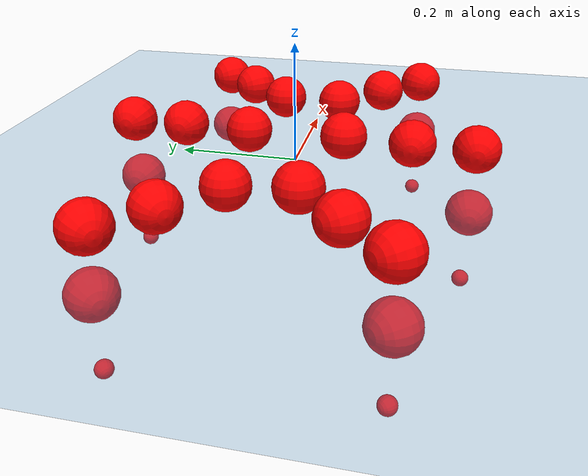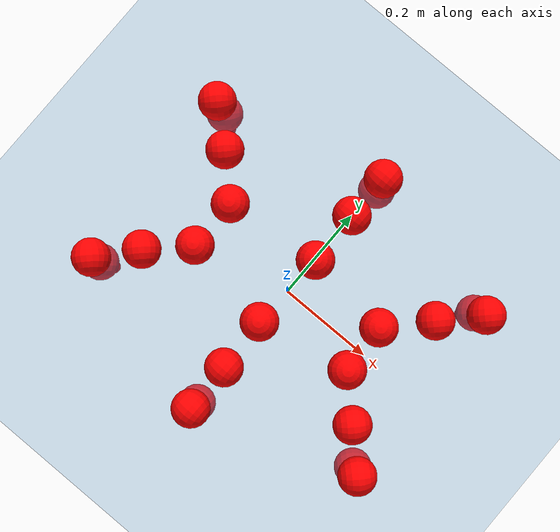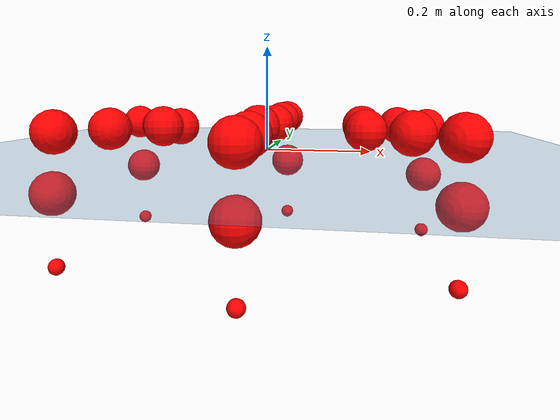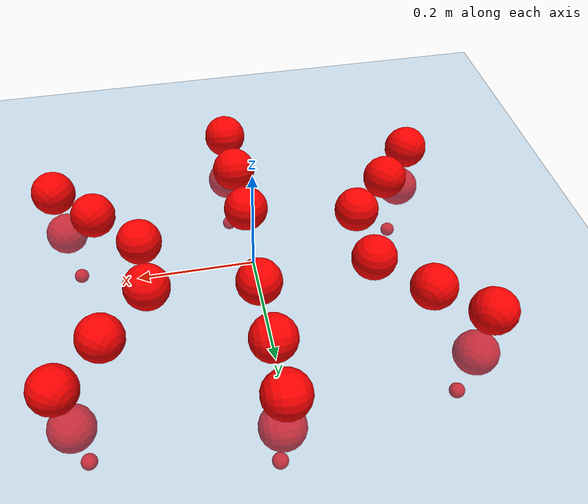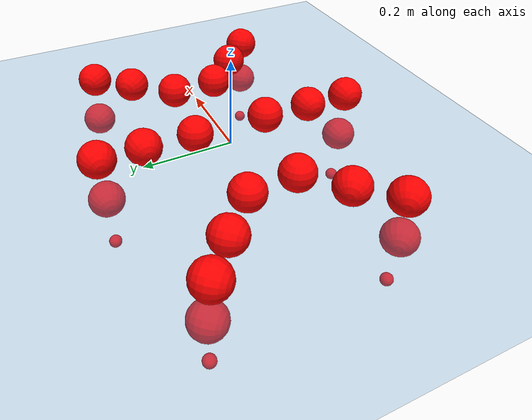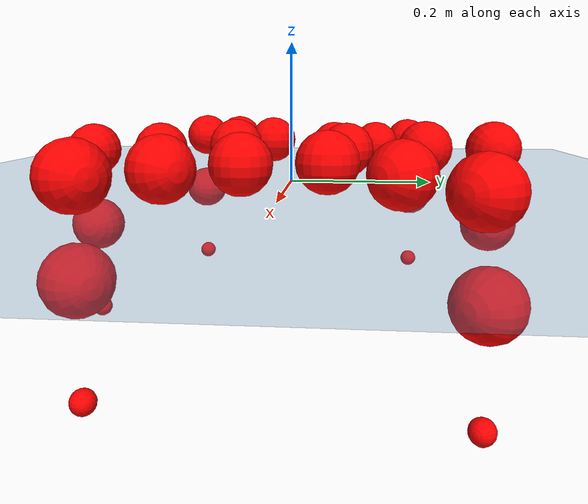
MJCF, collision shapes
<mujoco model="Golem">
  <compiler angle="radian" assetdir="assets" balanceinertia="true" inertiafromgeom="false"/>

  <option timestep="0.005" density="1.2" viscosity="2e-05"/>

  <size nkey="1"/>

  <visual>
    <quality shadowsize="8192"/>
    <map shadowclip="0.5"/>
  </visual>

  <default>
    <default class="/">
      <joint armature="0.01" damping="0.01" frictionloss="0.01"/>
      <geom contype="0" conaffinity="0" group="1" solref="-1000 -80"/>
      <site size="0.01 0.005 0.005" group="5"/>
      <general forcelimited="true" biastype="affine" gainprm="25" biasprm="0 -25 -0.5"/>
      <default class="visual">
        <geom type="mesh" group="2"/>
      </default>
      <default class="collision">
        <geom group="3"/>
      </default>
      <default class="foot">
        <geom size="0.01 0 0" condim="6" group="4" priority="1" solimp="0.015 1 0.01"/>
      </default>
      <default class="reward_collision_sphere">
        <geom group="5" rgba="1 0 0 1"/>
      </default>
    </default>
  </default>

  <asset>
    <texture type="skybox" colorspace="auto" name="//unnamed_texture_0" builtin="gradient" rgb1="0.95 0.95 0.95" rgb2="0.95 0.95 0.95" width="100" height="600"/>
    <texture type="2d" colorspace="auto" name="texplane" builtin="checker" rgb1="0.345 0.575 0.748" rgb2="0.345 0.575 0.748" markrgb="1 1 1" width="512" height="512"/>
    <material name="MatPlane" class="/" texture="texplane" texuniform="true" texrepeat="2 2" specular="0.9"/>
    <mesh name="body" class="/" file="body.stl" scale="0.001 0.001 0.001"/>
    <mesh name="coxa" class="/" file="coxa.stl" scale="0.001 0.001 0.001"/>
    <mesh name="femur" class="/" file="femur.stl" scale="0.001 0.001 0.001"/>
    <mesh name="tibia" class="/" file="tibia.stl" scale="0.001 0.001 0.001"/>
    <mesh name="tarsus" class="/" file="tarsus.stl" scale="0.001 0.001 0.001"/>
  </asset>

  <worldbody>
    <geom name="floor" class="/" size="100 100 0.125" type="plane" group="0" material="MatPlane"/>
    <light name="toplight_shadow" class="/" pos="0 0 5" dir="0.0990148 0.0990148 -0.990148" type="directional" ambient="0.04 0.04 0.04" diffuse="0.55 0.55 0.55" specular="0.12 0.12 0.12"/>
    <light name="toplight_fill" class="/" pos="0 0 5" dir="0.0990148 0.0990148 -0.990148" type="directional" castshadow="false" ambient="0.04 0.04 0.04" diffuse="0.3 0.3 0.3" specular="0.08 0.08 0.08"/>
    <body name="trunk" pos="-0.00235671 0.00232786 -0.00199946" quat="1 -0.000529384 -0.000600425 0.000590445">
      <inertial pos="-0.00285234 0.00183138 -0.00743165" quat="0.999997 -0.000159212 -0.00160002 0.0017202" mass="3.00467" diaginertia="0.0229728 0.00608056 0.00253018"/>
      <joint name="//unnamed_joint_0" type="free"/>
      <geom name="//unnamed_geom_1" class="/" pos="0 0 0.0497586" quat="1 0 0 0" type="mesh" rgba="0.9 0.9 0.9 1" mesh="body"/>
      <site name="imu" class="/" pos="0.168676 0.0117935 0.104854" size="0.00971107"/>
      <camera name="track" class="/" pos="0 -1.83308 0" quat="0.707107 0.707107 0 0" mode="trackcom"/>
      <camera name="ego_camera" class="/" pos="0.15851 0 0.0777478" quat="-0.5 -0.5 0.5 0.5"/>
      <body name="coxa_RR" pos="-0.218855 -0.0771494 0.0496065" quat="0.382893 -0.000285693 -9.11709e-05 -0.923793">
        <inertial pos="0.000654567 0.000718355 0.000864366" quat="1 0.000149055 0.000159393 0.000699792" mass="0.179679" diaginertia="0.0269545 0.00654391 0.00288953"/>
        <joint name="coxa_joint_RR" class="/" pos="0 0 0" axis="-0.0340692 -0.0135252 -0.999328" range="-3.1061 3.14334" armature="0.0106029" damping="0.00918311" frictionloss="0.00964534"/>
        <geom name="//unnamed_geom_2" class="/" type="mesh" rgba="0.2 0.2 0.2 1" mesh="coxa"/>
        <geom name="//unnamed_geom_3" class="reward_collision_sphere" size="0.0388443" pos="-0.0365791 0 0"/>
        <body name="femur_RR" pos="0.0679916 -0.00136157 -0.000520363" quat="0.500282 -0.49958 0.500324 0.499814">
          <inertial pos="0.002083 -8.26363e-05 0.000921349" quat="0.999989 -0.00119454 -0.00339383 0.00304019" mass="0.187424" diaginertia="0.0264064 0.00686828 0.00297884"/>
          <joint name="femur_joint_RR" class="/" pos="0 0 0" axis="0.0226404 0.00504769 -0.999731" range="-3.13362 3.16651" armature="0.00984301" damping="0.00372804" frictionloss="0.00989772"/>
          <geom name="//unnamed_geom_4" class="/" type="mesh" rgba="0.9 0.9 0.9 1" mesh="femur"/>
          <geom name="//unnamed_geom_5" class="reward_collision_sphere" size="0.0388443"/>
          <body name="tibia_RR" pos="0.000562874 -0.100066 0.0071161" quat="9.36143e-05 1 2.59144e-05 0.000160704">
            <inertial pos="-0.00194937 0.00600866 0.00169318" quat="0.999531 -0.0189438 -0.0240387 0.00141956" mass="0.183507" diaginertia="0.0251989 0.00637967 0.0028761"/>
            <joint name="tibia_joint_RR" class="/" pos="0 0 0" axis="0.00541574 0.00739952 0.999958" range="-3.1756 3.09976" armature="0.00933873" damping="0.00606174" frictionloss="0.00923465"/>
            <geom name="//unnamed_geom_6" class="/" type="mesh" rgba="0.2 0.2 0.2 1" mesh="tibia"/>
            <geom name="//unnamed_geom_7" class="reward_collision_sphere" size="0.0388443"/>
            <body name="tarsus_RR" pos="0.106053 0.00632906 0.000576827" quat="1 0.000169196 -0.000105232 0.000322391">
              <inertial pos="0.0761147 0.000616111 0.00199426" quat="0.50645 0.486885 0.516264 0.48982" mass="0.173736" diaginertia="0.0256172 0.00630894 0.00296897"/>
              <joint name="tarsus_joint_RR" class="/" pos="0 0 0" axis="0.0106914 -0.00145152 0.999942" range="-3.10387 3.09334" armature="0.00887104" damping="0.0188968" frictionloss="0.00816942"/>
              <geom name="//unnamed_geom_8" class="/" type="mesh" rgba="0.9 0.9 0.9 1" mesh="tarsus"/>
              <geom name="foot_1" class="foot" size="0.00958026" pos="0.136562 0 0" quat="0 -0.707107 0 0.707107"/>
              <geom name="//unnamed_geom_10" class="reward_collision_sphere" size="0.0388443"/>
              <geom name="//unnamed_geom_11" class="reward_collision_sphere" size="0.0145666" pos="0.131075 0 0"/>
              <site name="foot_1" class="foot" pos="0.136562 0 0" quat="0 -0.707107 0 0.707107" size="0.00971107"/>
            </body>
          </body>
        </body>
      </body>
      <body name="coxa_RM" pos="0.000381884 -0.121302 0.0534283" quat="0.706513 0.00238131 0.00271681 -0.707691">
        <inertial pos="-0.00214704 0.000757211 0.00414858" quat="1 0.000115516 -0.000279926 0.000371361" mass="0.180247" diaginertia="0.0278085 0.00621935 0.00279409"/>
        <joint name="coxa_joint_RM" class="/" pos="0 0 0" axis="0.00450546 0.00728141 -0.999963" stiffness="0.0029101" range="-3.09988 3.14382" armature="0.00836199" damping="0.021065" frictionloss="0.0102377"/>
        <geom name="//unnamed_geom_12" class="/" type="mesh" rgba="0.2 0.2 0.2 1" mesh="coxa"/>
        <geom name="//unnamed_geom_13" class="reward_collision_sphere" size="0.0388443" pos="-0.0365791 0 0"/>
        <body name="femur_RM" pos="0.0756909 0.00423692 -0.00488509" quat="0.499447 -0.501143 0.499437 0.499971">
          <inertial pos="-0.00592217 0.00105118 0.000116423" quat="0.999979 0.00602667 -0.00118822 0.00214936" mass="0.193933" diaginertia="0.0303885 0.006817 0.00324215"/>
          <joint name="femur_joint_RM" class="/" pos="0 0 0" axis="-0.00444829 -0.0117478 -0.999921" range="-3.12717 3.24296" armature="0.010697" damping="0" frictionloss="0.0099633"/>
          <geom name="//unnamed_geom_14" class="/" type="mesh" rgba="0.9 0.9 0.9 1" mesh="femur"/>
          <geom name="//unnamed_geom_15" class="reward_collision_sphere" size="0.0388443"/>
          <body name="tibia_RM" pos="0.00111535 -0.102255 0.00172966" quat="0.000207942 1 0.000454949 0.000373544">
            <inertial pos="0.00128172 -0.00718061 0.00212735" quat="0.999986 -0.000827618 -0.00466397 0.00239085" mass="0.190316" diaginertia="0.0271953 0.00651292 0.00281293"/>
            <joint name="tibia_joint_RM" class="/" pos="0 0 0" axis="0.006283 -0.00589994 0.999963" range="-3.11366 3.11024" armature="0.0089425" damping="0" frictionloss="0.00936656"/>
            <geom name="//unnamed_geom_16" class="/" type="mesh" rgba="0.2 0.2 0.2 1" mesh="tibia"/>
            <geom name="//unnamed_geom_17" class="reward_collision_sphere" size="0.0388443"/>
            <body name="tarsus_RM" pos="0.114132 0.000127493 0.000654555" quat="1 0.000512436 4.92333e-05 0.000212524">
              <inertial pos="0.0688666 -0.00169267 0.00188994" quat="0.50337 0.496024 0.497442 0.503121" mass="0.165797" diaginertia="0.0266906 0.00627698 0.00256394"/>
              <joint name="tarsus_joint_RM" class="/" pos="0 0 0" axis="0.00600627 0.00697469 0.999958" range="-3.08085 3.21221" armature="0.00997497" damping="0.0107696" frictionloss="0.0111457"/>
              <geom name="//unnamed_geom_18" class="/" type="mesh" rgba="0.9 0.9 0.9 1" mesh="tarsus"/>
              <geom name="foot_2" class="foot" size="0.00916534" pos="0.136562 0 0" quat="0 -0.707107 0 0.707107"/>
              <geom name="//unnamed_geom_20" class="reward_collision_sphere" size="0.0388443"/>
              <geom name="//unnamed_geom_21" class="reward_collision_sphere" size="0.0145666" pos="0.131075 0 0"/>
              <site name="foot_2" class="foot" pos="0.136562 0 0" quat="0 -0.707107 0 0.707107" size="0.00971107"/>
            </body>
          </body>
        </body>
      </body>
      <body name="coxa_RF" pos="0.217671 -0.0725128 0.0456383" quat="0.924073 0.000333857 -0.000203205 -0.382216">
        <inertial pos="-0.00208875 0.0054348 -0.00288678" quat="0.999665 0.0096732 -0.020544 0.0123937" mass="0.196364" diaginertia="0.0273827 0.00663142 0.00291237"/>
        <joint name="coxa_joint_RF" class="/" pos="0 0 0" axis="-0.00678894 0.0185074 -0.999806" stiffness="0.0112095" range="-3.25417 3.13213" armature="0.0116612" damping="0.0120764" frictionloss="0.00926475"/>
        <geom name="//unnamed_geom_22" class="/" type="mesh" rgba="0.2 0.2 0.2 1" mesh="coxa"/>
        <geom name="//unnamed_geom_23" class="reward_collision_sphere" size="0.0388443" pos="-0.0365791 0 0"/>
        <body name="femur_RF" pos="0.0699923 0.000163576 0.00192271" quat="0.500144 -0.500118 0.499651 0.500087">
          <inertial pos="0.00252123 -0.00530451 0.00169097" quat="0.999963 0.00427121 -0.00330686 -0.00668107" mass="0.179457" diaginertia="0.0247932 0.00597468 0.00256771"/>
          <joint name="femur_joint_RF" class="/" pos="0 0 0" axis="-0.00904503 0.00137495 -0.999958" range="-3.17843 3.13896" armature="0.00935805" damping="0.00278317" frictionloss="0.00970586"/>
          <geom name="//unnamed_geom_24" class="/" type="mesh" rgba="0.9 0.9 0.9 1" mesh="femur"/>
          <geom name="//unnamed_geom_25" class="reward_collision_sphere" size="0.0388443"/>
          <body name="tibia_RF" pos="-0.000331145 -0.0982622 0.000135236" quat="-1.7771e-05 1 5.62978e-05 8.07819e-06">
            <inertial pos="-0.000479015 9.98157e-05 0.00665721" quat="0.999774 0.016435 0.00816616 -0.010687" mass="0.184178" diaginertia="0.02574 0.00673015 0.00266955"/>
            <joint name="tibia_joint_RF" class="/" pos="0 0 0" axis="0.00147151 0.00262749 0.999995" range="-3.16083 3.12786" armature="0.0100791" damping="0.0188512" frictionloss="0.0093602"/>
            <geom name="//unnamed_geom_26" class="/" type="mesh" rgba="0.2 0.2 0.2 1" mesh="tibia"/>
            <geom name="//unnamed_geom_27" class="reward_collision_sphere" size="0.0388443"/>
            <body name="tarsus_RF" pos="0.106738 -0.000697134 0.000471438" quat="0.999999 0.00041544 -0.000974279 0.00093873">
              <inertial pos="0.0729195 0.00215682 0.00139923" quat="0.500841 0.500539 0.502872 0.49572" mass="0.181506" diaginertia="0.0260257 0.00676131 0.00302313"/>
              <joint name="tarsus_joint_RF" class="/" pos="0 0 0" axis="0.00377485 -0.00280174 0.999989" stiffness="0.028347" range="-3.20342 3.14189" armature="0.0110399" damping="0.0308464" frictionloss="0.0108392"/>
              <geom name="//unnamed_geom_28" class="/" type="mesh" rgba="0.9 0.9 0.9 1" mesh="tarsus"/>
              <geom name="foot_3" class="foot" size="0.00981182" pos="0.136562 0 0" quat="0 -0.707107 0 0.707107"/>
              <geom name="//unnamed_geom_30" class="reward_collision_sphere" size="0.0388443"/>
              <geom name="//unnamed_geom_31" class="reward_collision_sphere" size="0.0145666" pos="0.131075 0 0"/>
              <site name="foot_3" class="foot" pos="0.136562 0 0" quat="0 -0.707107 0 0.707107" size="0.00971107"/>
            </body>
          </body>
        </body>
      </body>
      <body name="coxa_LR" pos="-0.220002 0.082125 0.0419643" quat="0.382912 -0.000140576 -0.000545065 0.923785">
        <inertial pos="0.00247884 0.00303751 0.000601922" quat="0.9999 -0.00176168 0.0102414 -0.00963161" mass="0.194335" diaginertia="0.0253498 0.00687361 0.00317871"/>
        <joint name="coxa_joint_LR" class="/" pos="0 0 0" axis="-0.00402571 0.00148118 -0.999991" range="-3.12347 3.14373" armature="0.0100287" damping="0" frictionloss="0.0105296"/>
        <geom name="//unnamed_geom_32" class="/" type="mesh" rgba="0.2 0.2 0.2 1" mesh="coxa"/>
        <geom name="//unnamed_geom_33" class="reward_collision_sphere" size="0.0388443" pos="-0.0365791 0 0"/>
        <body name="femur_LR" pos="0.0719606 0.00175179 -0.00266565" quat="0.500498 -0.500607 0.499253 0.499641">
          <inertial pos="0.00196784 0.00737333 0.00182759" quat="0.999999 0.0013445 0.000227452 -0.000686834" mass="0.182803" diaginertia="0.029111 0.00633818 0.00308945"/>
          <joint name="femur_joint_LR" class="/" pos="0 0 0" axis="-0.00730118 -0.00243929 0.99997" range="-3.23483 3.15246" armature="0.00869938" damping="0.0467581" frictionloss="0.00956698"/>
          <geom name="//unnamed_geom_34" class="/" type="mesh" rgba="0.9 0.9 0.9 1" mesh="femur"/>
          <geom name="//unnamed_geom_35" class="reward_collision_sphere" size="0.0388443"/>
          <body name="tibia_LR" pos="-0.00246898 -0.098273 0.00673715" quat="0.000185458 1 -0.000244431 -3.48566e-05">
            <inertial pos="-0.000825118 0.00303137 0.00111412" quat="0.999773 0.00394309 -0.00214417 -0.0208304" mass="0.193594" diaginertia="0.0288626 0.0067291 0.00292743"/>
            <joint name="tibia_joint_LR" class="/" pos="0 0 0" axis="-0.00794434 -0.00121432 -0.999968" stiffness="0.0186486" range="-3.15156 3.03953" armature="0.0103825" damping="0.00494245" frictionloss="0.00985868"/>
            <geom name="//unnamed_geom_36" class="/" type="mesh" rgba="0.2 0.2 0.2 1" mesh="tibia"/>
            <geom name="//unnamed_geom_37" class="reward_collision_sphere" size="0.0388443"/>
            <body name="tarsus_LR" pos="0.108891 0.00324432 0.00690719" quat="0.999999 -0.000943421 0.000234201 0.00073916">
              <inertial pos="0.0690813 0.0060096 0.0048168" quat="0.498973 0.497776 0.502554 0.500684" mass="0.185477" diaginertia="0.027118 0.00648407 0.00300012"/>
              <joint name="tarsus_joint_LR" class="/" pos="0 0 0" axis="0.0128692 -0.020337 -0.99971" stiffness="0.0244285" range="-3.15044 3.1593" armature="0.0107723" damping="0.0266677" frictionloss="0.0102203"/>
              <geom name="//unnamed_geom_38" class="/" type="mesh" rgba="0.9 0.9 0.9 1" mesh="tarsus"/>
              <geom name="foot_4" class="foot" size="0.00712975" pos="0.136562 0 0" quat="0.707107 0 -0.707107 0"/>
              <geom name="//unnamed_geom_40" class="reward_collision_sphere" size="0.0388443"/>
              <geom name="//unnamed_geom_41" class="reward_collision_sphere" size="0.0145666" pos="0.131075 0 0"/>
              <site name="foot_4" class="foot" pos="0.136562 0 0" quat="0.707107 0 -0.707107 0" size="0.00971107"/>
            </body>
          </body>
        </body>
      </body>
      <body name="coxa_LM" pos="0.0065761 0.114588 0.0491342" quat="0.706637 -0.000181358 -0.000347932 0.707576">
        <inertial pos="-0.000827366 0.00234467 0.00124425" quat="0.999762 0.00763678 -0.0116762 0.0167633" mass="0.175564" diaginertia="0.0252453 0.00596774 0.00258591"/>
        <joint name="coxa_joint_LM" class="/" pos="0 0 0" axis="-0.033081 -0.00968656 -0.999406" range="-3.11676 3.18059" armature="0.0103944" damping="0.00884246" frictionloss="0.00912973"/>
        <geom name="//unnamed_geom_42" class="/" type="mesh" rgba="0.2 0.2 0.2 1" mesh="coxa"/>
        <geom name="//unnamed_geom_43" class="reward_collision_sphere" size="0.0388443" pos="-0.0365791 0 0"/>
        <body name="femur_LM" pos="0.0760654 0.00100632 0.00287057" quat="0.5 -0.499985 0.499974 0.500041">
          <inertial pos="-0.00230671 -0.0026555 -0.00201858" quat="0.999902 0.0125246 -0.00625456 0.000292168" mass="0.17764" diaginertia="0.0275744 0.00576347 0.00268308"/>
          <joint name="femur_joint_LM" class="/" pos="0 0 0" axis="-0.00255233 -0.00484629 0.999985" stiffness="0.00869342" range="-3.10374 3.18028" armature="0.00835047" damping="0" frictionloss="0.0107066"/>
          <geom name="//unnamed_geom_44" class="/" type="mesh" rgba="0.9 0.9 0.9 1" mesh="femur"/>
          <geom name="//unnamed_geom_45" class="reward_collision_sphere" size="0.0388443"/>
          <body name="tibia_LM" pos="5.9081e-05 -0.095619 -0.000610396" quat="0.00168293 0.999998 -0.000125882 0.000762938">
            <inertial pos="-0.00143383 0.00106827 0.00417731" quat="0.999715 -0.00601583 -0.0067063 0.0221105" mass="0.174003" diaginertia="0.0256945 0.00576864 0.00269319"/>
            <joint name="tibia_joint_LM" class="/" pos="0 0 0" axis="0.00156645 0.00176579 -0.999997" stiffness="0.0277695" range="-3.13308 3.13418" armature="0.00996397" damping="0.00647079" frictionloss="0.0113602"/>
            <geom name="//unnamed_geom_46" class="/" type="mesh" rgba="0.2 0.2 0.2 1" mesh="tibia"/>
            <geom name="//unnamed_geom_47" class="reward_collision_sphere" size="0.0388443"/>
            <body name="tarsus_LM" pos="0.109107 -0.00374416 0.00132884" quat="0.999998 -0.0018149 0.00115112 -6.83471e-05">
              <inertial pos="0.0729747 0.00147196 -0.000450414" quat="0.517058 0.486431 0.490344 0.505569" mass="0.168345" diaginertia="0.0239306 0.00621547 0.00276945"/>
              <joint name="tarsus_joint_LM" class="/" pos="0 0 0" axis="0.0149976 0.0294899 -0.999453" range="-3.09637 3.0997" armature="0.00874561" damping="0.0289262" frictionloss="0.00742898"/>
              <geom name="//unnamed_geom_48" class="/" type="mesh" rgba="0.9 0.9 0.9 1" mesh="tarsus"/>
              <geom name="foot_5" class="foot" size="0.00933569" pos="0.136562 0 0" quat="0.707107 0 -0.707107 0"/>
              <geom name="//unnamed_geom_50" class="reward_collision_sphere" size="0.0388443"/>
              <geom name="//unnamed_geom_51" class="reward_collision_sphere" size="0.0145666" pos="0.131075 0 0"/>
              <site name="foot_5" class="foot" pos="0.136562 0 0" quat="0.707107 0 -0.707107 0" size="0.00971107"/>
            </body>
          </body>
        </body>
      </body>
      <body name="coxa_LF" pos="0.211854 0.0823518 0.0484304" quat="0.923453 -0.000131213 -0.000184149 0.383711">
        <inertial pos="-0.000182083 -0.000592774 -0.00415134" quat="0.999911 0.00570973 -0.0104533 0.00598712" mass="0.182998" diaginertia="0.0280771 0.00594988 0.00284871"/>
        <joint name="coxa_joint_LF" class="/" pos="0 0 0" axis="0.0169312 0.00294227 -0.999852" range="-3.186 3.15445" armature="0.0114819" damping="0.00548636" frictionloss="0.00621503"/>
        <geom name="//unnamed_geom_52" class="/" type="mesh" rgba="0.2 0.2 0.2 1" mesh="coxa"/>
        <geom name="//unnamed_geom_53" class="reward_collision_sphere" size="0.0388443" pos="-0.0365791 0 0"/>
        <body name="femur_LF" pos="0.0753564 0.00333413 -0.004754" quat="0.50103 -0.499503 0.499654 0.499811">
          <inertial pos="0.00686121 -0.000131901 -0.00730529" quat="0.999952 -0.00827106 -1.97333e-05 -0.00532555" mass="0.186314" diaginertia="0.0257194 0.00677581 0.00287625"/>
          <joint name="femur_joint_LF" class="/" pos="0 0 0" axis="-0.00157028 -0.00215322 0.999996" stiffness="0.00442732" range="-3.11155 3.10545" armature="0.0090601" damping="0.00758195" frictionloss="0.0107094"/>
          <geom name="//unnamed_geom_54" class="/" type="mesh" rgba="0.9 0.9 0.9 1" mesh="femur"/>
          <geom name="//unnamed_geom_55" class="reward_collision_sphere" size="0.0388443"/>
          <body name="tibia_LF" pos="0.00647999 -0.101835 0.00204207" quat="-1.47239e-05 1 -0.000378606 0.000420754">
            <inertial pos="-0.000302426 0.00673394 -0.00339373" quat="0.999999 -0.000357281 -0.000731861 0.000996887" mass="0.202398" diaginertia="0.0317687 0.00713081 0.00315882"/>
            <joint name="tibia_joint_LF" class="/" pos="0 0 0" axis="0.00382047 -0.0107228 -0.999935" range="-3.14931 3.1844" armature="0.00860356" damping="0.0148851" frictionloss="0.0101088"/>
            <geom name="//unnamed_geom_56" class="/" type="mesh" rgba="0.2 0.2 0.2 1" mesh="tibia"/>
            <geom name="//unnamed_geom_57" class="reward_collision_sphere" size="0.0388443"/>
            <body name="tarsus_LF" pos="0.111803 0.00238238 -0.00610479" quat="0.999999 0.00044255 -0.000302854 -0.00100896">
              <inertial pos="0.0758466 -0.000526941 -0.0025873" quat="0.502337 0.501828 0.493385 0.502391" mass="0.2061" diaginertia="0.0295905 0.00731482 0.0031019"/>
              <joint name="tarsus_joint_LF" class="/" pos="0 0 0" axis="-0.000381871 -0.00384742 -0.999993" range="-3.09765 3.15274" armature="0.0080347" damping="0.0313765" frictionloss="0.0128338"/>
              <geom name="//unnamed_geom_58" class="/" type="mesh" rgba="0.9 0.9 0.9 1" mesh="tarsus"/>
              <geom name="foot_6" class="foot" size="0.0101369" pos="0.136562 0 0" quat="0.707107 0 -0.707107 0"/>
              <geom name="//unnamed_geom_60" class="reward_collision_sphere" size="0.0388443"/>
              <geom name="//unnamed_geom_61" class="reward_collision_sphere" size="0.0145666" pos="0.131075 0 0"/>
              <site name="foot_6" class="foot" pos="0.136562 0 0" quat="0.707107 0 -0.707107 0" size="0.00971107"/>
            </body>
          </body>
        </body>
      </body>
    </body>
  </worldbody>

  <contact>
    <pair class="/" geom1="floor" geom2="foot_1" name="//unnamed_contact_0"/>
    <pair class="/" geom1="floor" geom2="foot_2" name="//unnamed_contact_1"/>
    <pair class="/" geom1="floor" geom2="foot_3" name="//unnamed_contact_2"/>
    <pair class="/" geom1="floor" geom2="foot_4" name="//unnamed_contact_3"/>
    <pair class="/" geom1="floor" geom2="foot_5" name="//unnamed_contact_4"/>
    <pair class="/" geom1="floor" geom2="foot_6" name="//unnamed_contact_5"/>
  </contact>

  <actuator>
    <general name="coxa_joint_RR" class="/" joint="coxa_joint_RR" forcerange="-6.7753 6.7753" gainprm="21.4589" biasprm="0 -21.4589 -0.465027"/>
    <general name="femur_joint_RR" class="/" joint="femur_joint_RR" forcerange="-6.51956 6.51956" gainprm="21.4589" biasprm="0 -21.4589 -0.465027"/>
    <general name="tibia_joint_RR" class="/" joint="tibia_joint_RR" forcerange="-6.63221 6.63221" gainprm="21.4589" biasprm="0 -21.4589 -0.465027"/>
    <general name="tarsus_joint_RR" class="/" joint="tarsus_joint_RR" forcerange="-5.91123 5.91123" gainprm="21.4589" biasprm="0 -21.4589 -0.465027"/>
    <general name="coxa_joint_RM" class="/" joint="coxa_joint_RM" forcerange="-7.6729 7.6729" gainprm="21.4589" biasprm="0 -21.4589 -0.465027"/>
    <general name="femur_joint_RM" class="/" joint="femur_joint_RM" forcerange="-7.01877 7.01877" gainprm="21.4589" biasprm="0 -21.4589 -0.465027"/>
    <general name="tibia_joint_RM" class="/" joint="tibia_joint_RM" forcerange="-7.00423 7.00423" gainprm="21.4589" biasprm="0 -21.4589 -0.465027"/>
    <general name="tarsus_joint_RM" class="/" joint="tarsus_joint_RM" forcerange="-5.4903 5.4903" gainprm="21.4589" biasprm="0 -21.4589 -0.465027"/>
    <general name="coxa_joint_RF" class="/" joint="coxa_joint_RF" forcerange="-6.95493 6.95493" gainprm="21.4589" biasprm="0 -21.4589 -0.465027"/>
    <general name="femur_joint_RF" class="/" joint="femur_joint_RF" forcerange="-8.5436 8.5436" gainprm="21.4589" biasprm="0 -21.4589 -0.465027"/>
    <general name="tibia_joint_RF" class="/" joint="tibia_joint_RF" forcerange="-6.67417 6.67417" gainprm="21.4589" biasprm="0 -21.4589 -0.465027"/>
    <general name="tarsus_joint_RF" class="/" joint="tarsus_joint_RF" forcerange="-7.63939 7.63939" gainprm="21.4589" biasprm="0 -21.4589 -0.465027"/>
    <general name="coxa_joint_LR" class="/" joint="coxa_joint_LR" forcerange="-7.36604 7.36604" gainprm="21.4589" biasprm="0 -21.4589 -0.465027"/>
    <general name="femur_joint_LR" class="/" joint="femur_joint_LR" forcerange="-7.41556 7.41556" gainprm="21.4589" biasprm="0 -21.4589 -0.465027"/>
    <general name="tibia_joint_LR" class="/" joint="tibia_joint_LR" forcerange="-7.09434 7.09434" gainprm="21.4589" biasprm="0 -21.4589 -0.465027"/>
    <general name="tarsus_joint_LR" class="/" joint="tarsus_joint_LR" forcerange="-7.38277 7.38277" gainprm="21.4589" biasprm="0 -21.4589 -0.465027"/>
    <general name="coxa_joint_LM" class="/" joint="coxa_joint_LM" forcerange="-6.46999 6.46999" gainprm="21.4589" biasprm="0 -21.4589 -0.465027"/>
    <general name="femur_joint_LM" class="/" joint="femur_joint_LM" forcerange="-7.4995 7.4995" gainprm="21.4589" biasprm="0 -21.4589 -0.465027"/>
    <general name="tibia_joint_LM" class="/" joint="tibia_joint_LM" forcerange="-6.83731 6.83731" gainprm="21.4589" biasprm="0 -21.4589 -0.465027"/>
    <general name="tarsus_joint_LM" class="/" joint="tarsus_joint_LM" forcerange="-6.4881 6.4881" gainprm="21.4589" biasprm="0 -21.4589 -0.465027"/>
    <general name="coxa_joint_LF" class="/" joint="coxa_joint_LF" forcerange="-8.22553 8.22553" gainprm="21.4589" biasprm="0 -21.4589 -0.465027"/>
    <general name="femur_joint_LF" class="/" joint="femur_joint_LF" forcerange="-7.37126 7.37126" gainprm="21.4589" biasprm="0 -21.4589 -0.465027"/>
    <general name="tibia_joint_LF" class="/" joint="tibia_joint_LF" forcerange="-6.8231 6.8231" gainprm="21.4589" biasprm="0 -21.4589 -0.465027"/>
    <general name="tarsus_joint_LF" class="/" joint="tarsus_joint_LF" forcerange="-6.77006 6.77006" gainprm="21.4589" biasprm="0 -21.4589 -0.465027"/>
  </actuator>

  <sensor>
    <gyro site="imu" name="imu_angular_velocity"/>
    <velocimeter site="imu" name="imu_linear_velocity"/>
    <framelinvel objtype="site" objname="foot_1" name="foot_1_global_linear_velocity"/>
    <framelinvel objtype="site" objname="foot_2" name="foot_2_global_linear_velocity"/>
    <framelinvel objtype="site" objname="foot_3" name="foot_3_global_linear_velocity"/>
    <framelinvel objtype="site" objname="foot_4" name="foot_4_global_linear_velocity"/>
    <framelinvel objtype="site" objname="foot_5" name="foot_5_global_linear_velocity"/>
    <framelinvel objtype="site" objname="foot_6" name="foot_6_global_linear_velocity"/>
  </sensor>

  <keyframe>
    <key name="home" qpos="0 0 0.1457 1 0 0 0 0 0 0 0 0 0 0 0 0 0 0 0 0 0 0 0 0 0 0 0 0 0 0 0"/>
  </keyframe>
</mujoco>
